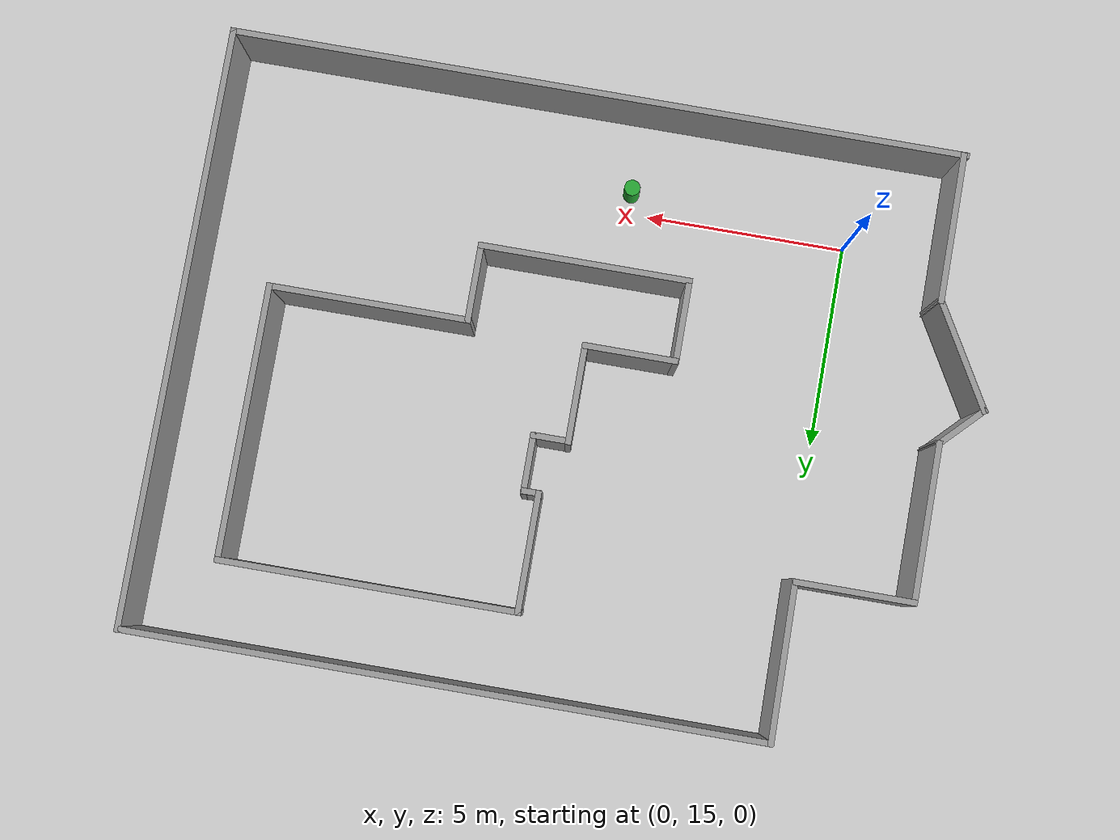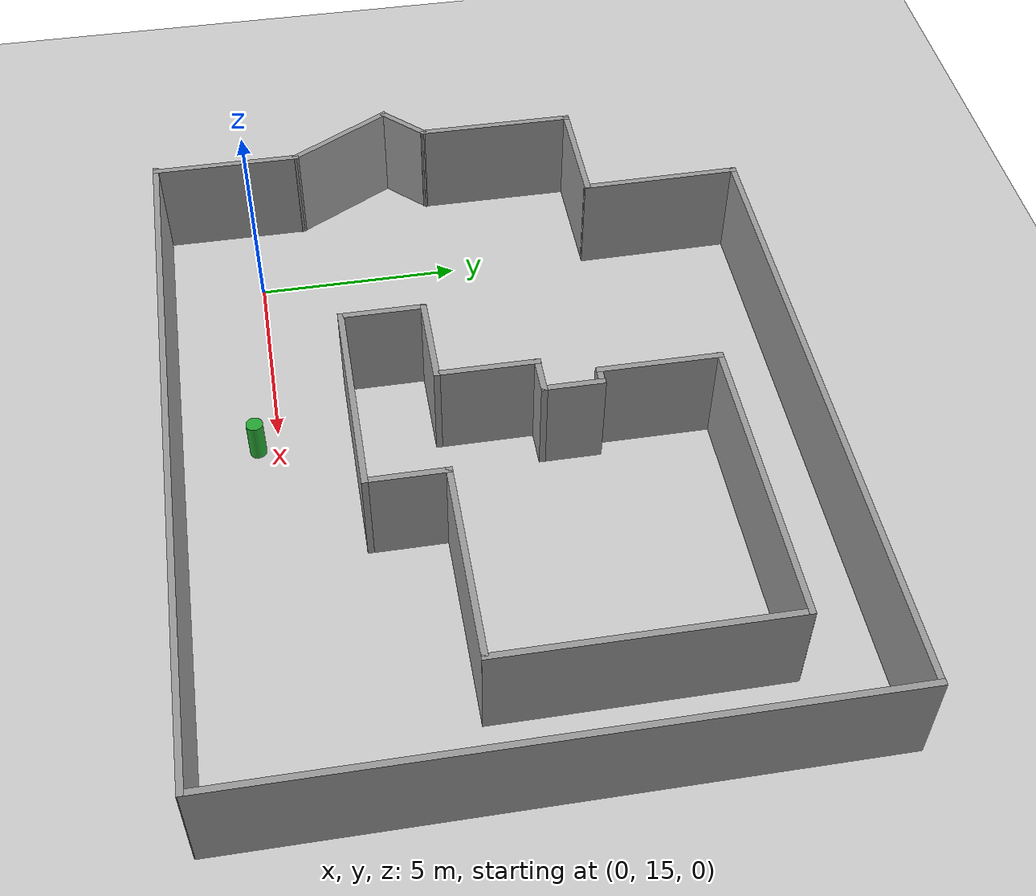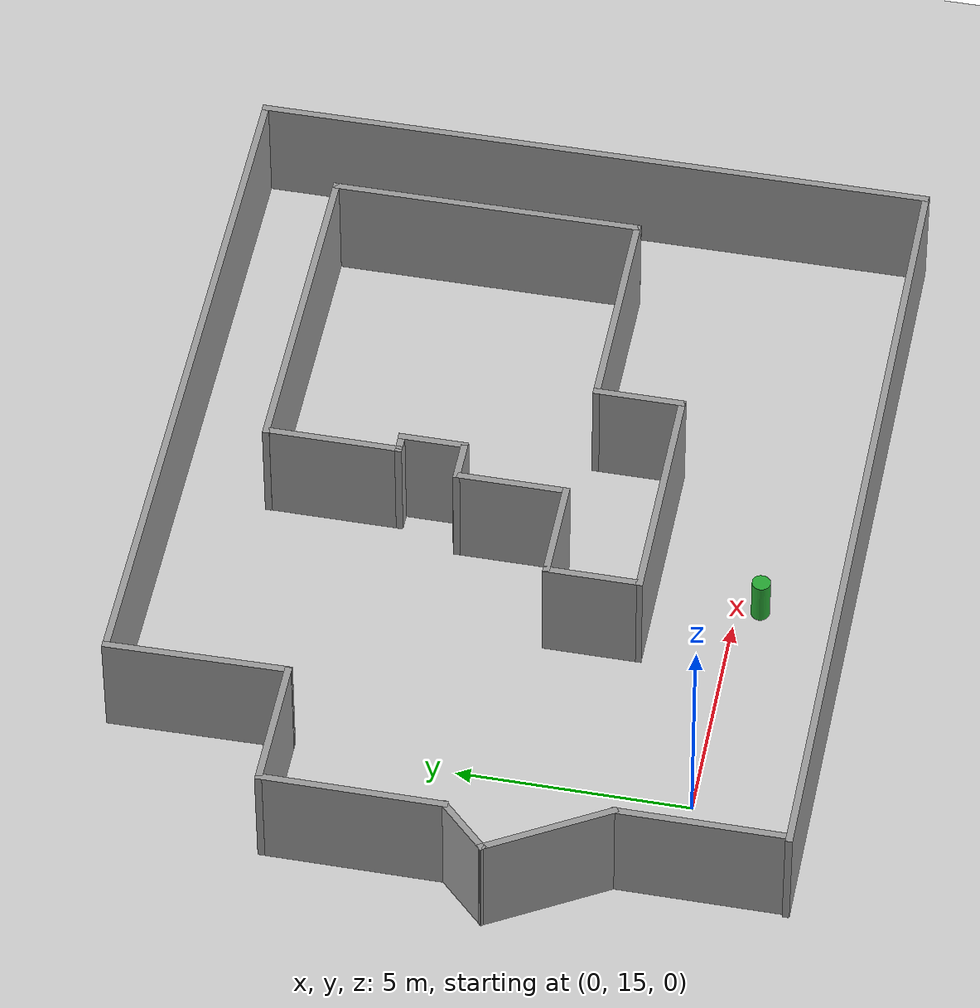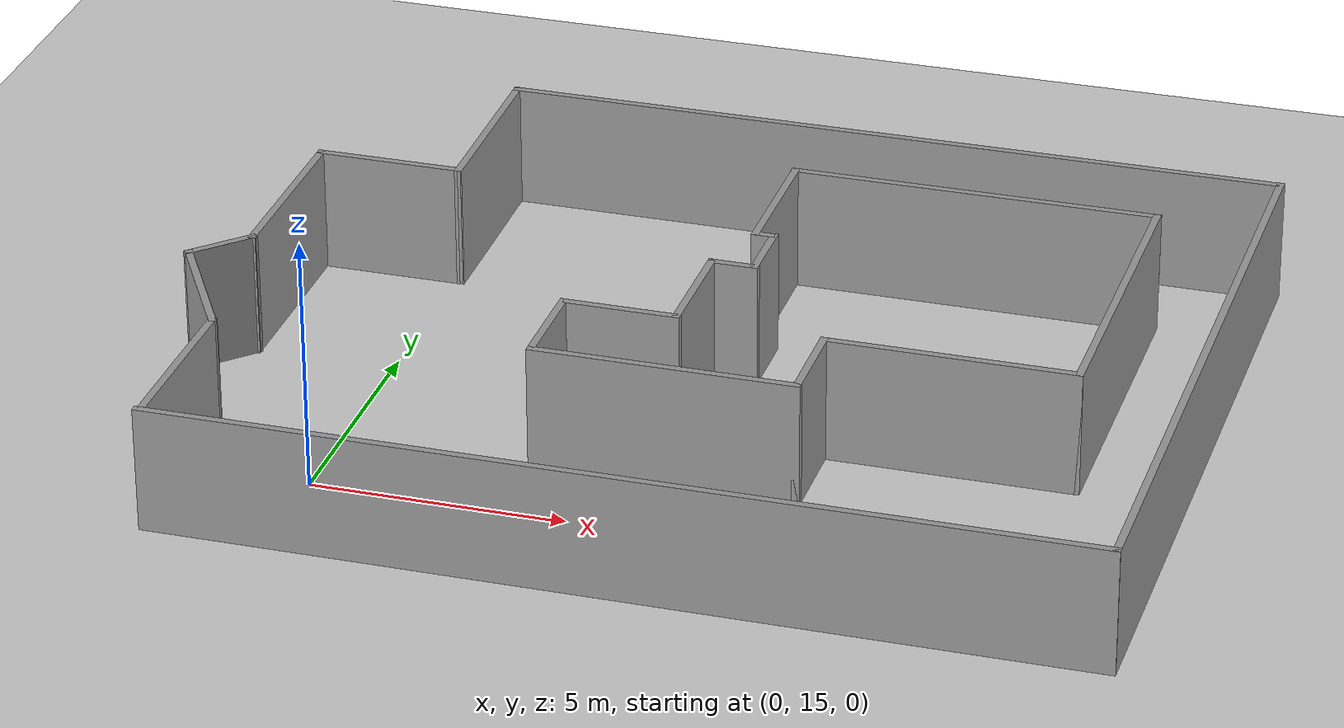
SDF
<?xml version="1.0"?>
<sdf version="1.4">
<world name="racecar_tunnel">

  <include>
    <uri>model://sun</uri>
  </include>

  <gui>
    <camera name='main'>
      <pose>0 0 10 0 1.571 0</pose>
    </camera>
  </gui>

  <model name="ground_plane">
    <static>true</static>
    <link name="link">
      <collision name="collision">
        <geometry>
          <plane>
            <normal>0 0 1</normal>
            <size>150 150</size>
          </plane>
        </geometry>
        <surface>
          <friction>
            <ode>
              <mu>100</mu>
              <mu2>50</mu2>
            </ode>
          </friction>
        </surface>
      </collision>
      <visual name="visual">
        <cast_shadows>false</cast_shadows>
        <geometry>
          <plane>
            <normal>0 0 1</normal>
            <size>150 150</size>
          </plane>
        </geometry>
        <material>
          <script>
            <uri>file://media/materials/scripts/gazebo.material</uri>
            <name>Gazebo/Grey</name>
          </script>
        </material>
      </visual>
    </link>
  </model>

  <include>
    <uri>model://racecar_description/models/MIT_Tunnel</uri>
    <pose>6 20 0 0 0 0</pose>
  </include>

<!-- CUSTOM Cylinder -->
<model name="custom_ground_plane_box">
      <pose>5.5 14.5 0.5 0 0 0</pose>
    <link name="link_box">
      <inertial>
        <pose>0 0 0 0 0 0</pose>
        <mass>100</mass>
        <inertia>
          <ixx>3.33341666667e+3</ixx>
          <ixy>0.0</ixy>
          <ixz>0.0</ixz>
          <iyy>3.33341666667e+3</iyy>
          <iyz>0.0</iyz>
          <izz>6.66666666667e+3</izz>
        </inertia>
      </inertial>
      <collision name="collision_box">
        <geometry>
          <cylinder>
            <radius>0.2</radius>
            <length>1.0</length>
          </cylinder>
        </geometry>
        <surface>
            <friction>
              <ode>
                <mu>0</mu>
                <mu2>0</mu2>
              </ode>
            </friction>
          </surface>
      </collision>

      <visual name="visual_box">
        <geometry>
          <cylinder>
            <radius>0.2</radius>
            <length>1.0</length>
          </cylinder>
        </geometry>
        <material>
            <script>
              <uri>file://media/materials/scripts/gazebo.material</uri>
              <name>Gazebo/Green</name>
            </script>
          </material>
      </visual>
    </link>
    <plugin name="plannar_mover_plugin" filename="libplannar_mover_plugin.so"/>
  </model>

</world>
</sdf>

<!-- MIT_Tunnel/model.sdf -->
<sdf version='1.6'>
  <model name='MIT_Tunnel'>
    <link name='Wall_10'>
      <pose frame=''>0.698931 -7.36559 0 0 -0 3.14159</pose>
      <self_collide>0</self_collide>
      <enable_wind>0</enable_wind>
      <kinematic>0</kinematic>
      <visual name='Wall_10_Visual'>
        <pose frame=''>0 0 1.25 0 -0 0</pose>
        <geometry>
          <box>
            <size>18.25 0.15 2.5</size>
          </box>
        </geometry>
        <material>
          <script>
            <uri>file://media/materials/scripts/gazebo.material</uri>
            <name>Gazebo/Grey</name>
          </script>
          <ambient>1 1 1 1</ambient>
          <shader type='pixel'/>
        </material>
        <meta>
          <layer>0</layer>
        </meta>
        <transparency>0</transparency>
        <cast_shadows>1</cast_shadows>
      </visual>
      <collision name='Wall_10_Collision'>
        <laser_retro>0</laser_retro>
        <max_contacts>10</max_contacts>
        <pose frame=''>0 0 1.25 0 -0 0</pose>
        <geometry>
          <box>
            <size>18.25 0.15 2.5</size>
          </box>
        </geometry>
        <surface>
          <friction>
            <ode>
              <mu>1</mu>
              <mu2>1</mu2>
              <fdir1>0 0 0</fdir1>
              <slip1>0</slip1>
              <slip2>0</slip2>
            </ode>
            <torsional>
              <coefficient>1</coefficient>
              <patch_radius>0</patch_radius>
              <surface_radius>0</surface_radius>
              <use_patch_radius>1</use_patch_radius>
              <ode>
                <slip>0</slip>
              </ode>
            </torsional>
          </friction>
          <bounce>
            <restitution_coefficient>0</restitution_coefficient>
            <threshold>1e+06</threshold>
          </bounce>
          <contact>
            <collide_without_contact>0</collide_without_contact>
            <collide_without_contact_bitmask>1</collide_without_contact_bitmask>
            <collide_bitmask>1</collide_bitmask>
            <ode>
              <soft_cfm>0</soft_cfm>
              <soft_erp>0.2</soft_erp>
              <kp>1e+13</kp>
              <kd>1</kd>
              <max_vel>0.01</max_vel>
              <min_depth>0</min_depth>
            </ode>
            <bullet>
              <split_impulse>1</split_impulse>
              <split_impulse_penetration_threshold>-0.01</split_impulse_penetration_threshold>
              <soft_cfm>0</soft_cfm>
              <soft_erp>0.2</soft_erp>
              <kp>1e+13</kp>
              <kd>1</kd>
            </bullet>
          </contact>
        </surface>
      </collision>
    </link>
    <link name='Wall_12'>
      <pose frame=''>9.74893 0.009562 0 0 -0 1.5708</pose>
      <self_collide>0</self_collide>
      <enable_wind>0</enable_wind>
      <kinematic>0</kinematic>
      <inertial>
        <inertia>
          <ixx>0</ixx>
          <ixy>0</ixy>
          <ixz>0</ixz>
          <iyy>0</iyy>
          <iyz>0</iyz>
          <izz>0</izz>
        </inertia>
        <mass>0</mass>
        <pose frame=''>0 0 0 0 -0 0</pose>
      </inertial>
      <visual name='Wall_12_Visual'>
        <pose frame=''>0 0 1.25 0 -0 0</pose>
        <geometry>
          <box>
            <size>14.8649 0.15 2.5</size>
          </box>
        </geometry>
        <material>
          <script>
            <uri>file://media/materials/scripts/gazebo.material</uri>
            <name>Gazebo/Grey</name>
          </script>
          <ambient>1 1 1 1</ambient>
          <shader type='pixel'/>
        </material>
        <meta>
          <layer>0</layer>
        </meta>
        <transparency>0</transparency>
        <cast_shadows>1</cast_shadows>
      </visual>
      <collision name='Wall_12_Collision'>
        <laser_retro>0</laser_retro>
        <max_contacts>10</max_contacts>
        <pose frame=''>0 0 1.25 0 -0 0</pose>
        <geometry>
          <box>
            <size>14.8649 0.15 2.5</size>
          </box>
        </geometry>
        <surface>
          <friction>
            <ode>
              <mu>1</mu>
              <mu2>1</mu2>
              <fdir1>0 0 0</fdir1>
              <slip1>0</slip1>
              <slip2>0</slip2>
            </ode>
            <torsional>
              <coefficient>1</coefficient>
              <patch_radius>0</patch_radius>
              <surface_radius>0</surface_radius>
              <use_patch_radius>1</use_patch_radius>
              <ode>
                <slip>0</slip>
              </ode>
            </torsional>
          </friction>
          <bounce>
            <restitution_coefficient>0</restitution_coefficient>
            <threshold>1e+06</threshold>
          </bounce>
          <contact>
            <collide_without_contact>0</collide_without_contact>
            <collide_without_contact_bitmask>1</collide_without_contact_bitmask>
            <collide_bitmask>1</collide_bitmask>
            <ode>
              <soft_cfm>0</soft_cfm>
              <soft_erp>0.2</soft_erp>
              <kp>1e+13</kp>
              <kd>1</kd>
              <max_vel>0.01</max_vel>
              <min_depth>0</min_depth>
            </ode>
            <bullet>
              <split_impulse>1</split_impulse>
              <split_impulse_penetration_threshold>-0.01</split_impulse_penetration_threshold>
              <soft_cfm>0</soft_cfm>
              <soft_erp>0.2</soft_erp>
              <kp>1e+13</kp>
              <kd>1</kd>
            </bullet>
          </contact>
        </surface>
      </collision>
    </link>
    <link name='Wall_25'>
      <pose frame=''>1.859 7.36128 0 0 -0 3.14159</pose>
      <self_collide>0</self_collide>
      <enable_wind>0</enable_wind>
      <kinematic>0</kinematic>
      <inertial>
        <inertia>
          <ixx>0</ixx>
          <ixy>0</ixy>
          <ixz>0</ixz>
          <iyy>0</iyy>
          <iyz>0</iyz>
          <izz>0</izz>
        </inertia>
        <mass>0</mass>
        <pose frame=''>0 0 0 0 -0 0</pose>
      </inertial>
      <visual name='Wall_25_Visual'>
        <pose frame=''>0 0 1.25 0 -0 0</pose>
        <geometry>
          <box>
            <size>15.7509 0.15 2.5</size>
          </box>
        </geometry>
        <material>
          <script>
            <uri>file://media/materials/scripts/gazebo.material</uri>
            <name>Gazebo/Grey</name>
          </script>
          <ambient>1 1 1 1</ambient>
          <shader type='pixel'/>
        </material>
        <meta>
          <layer>0</layer>
        </meta>
        <transparency>0</transparency>
        <cast_shadows>1</cast_shadows>
      </visual>
      <collision name='Wall_25_Collision'>
        <laser_retro>0</laser_retro>
        <max_contacts>10</max_contacts>
        <pose frame=''>0 0 1.25 0 -0 0</pose>
        <geometry>
          <box>
            <size>15.7509 0.15 2.5</size>
          </box>
        </geometry>
        <surface>
          <friction>
            <ode>
              <mu>1</mu>
              <mu2>1</mu2>
              <fdir1>0 0 0</fdir1>
              <slip1>0</slip1>
              <slip2>0</slip2>
            </ode>
            <torsional>
              <coefficient>1</coefficient>
              <patch_radius>0</patch_radius>
              <surface_radius>0</surface_radius>
              <use_patch_radius>1</use_patch_radius>
              <ode>
                <slip>0</slip>
              </ode>
            </torsional>
          </friction>
          <bounce>
            <restitution_coefficient>0</restitution_coefficient>
            <threshold>1e+06</threshold>
          </bounce>
          <contact>
            <collide_without_contact>0</collide_without_contact>
            <collide_without_contact_bitmask>1</collide_without_contact_bitmask>
            <collide_bitmask>1</collide_bitmask>
            <ode>
              <soft_cfm>0</soft_cfm>
              <soft_erp>0.2</soft_erp>
              <kp>1e+13</kp>
              <kd>1</kd>
              <max_vel>0.01</max_vel>
              <min_depth>0</min_depth>
            </ode>
            <bullet>
              <split_impulse>1</split_impulse>
              <split_impulse_penetration_threshold>-0.01</split_impulse_penetration_threshold>
              <soft_cfm>0</soft_cfm>
              <soft_erp>0.2</soft_erp>
              <kp>1e+13</kp>
              <kd>1</kd>
            </bullet>
          </contact>
        </surface>
      </collision>
    </link>
    <link name='Wall_29'>
      <pose frame=''>4.08662 5.34847 0 0 -0 3.14159</pose>
      <self_collide>0</self_collide>
      <enable_wind>0</enable_wind>
      <kinematic>0</kinematic>
      <inertial>
        <inertia>
          <ixx>0</ixx>
          <ixy>0</ixy>
          <ixz>0</ixz>
          <iyy>0</iyy>
          <iyz>0</iyz>
          <izz>0</izz>
        </inertia>
        <mass>0</mass>
        <pose frame=''>0 0 0 0 -0 0</pose>
      </inertial>
      <visual name='Wall_29_Visual'>
        <pose frame=''>0 0 1.25 0 -0 0</pose>
        <geometry>
          <box>
            <size>7.41647 0.15 2.5</size>
          </box>
        </geometry>
        <material>
          <script>
            <uri>file://media/materials/scripts/gazebo.material</uri>
            <name>Gazebo/Grey</name>
          </script>
          <ambient>1 1 1 1</ambient>
          <shader type='pixel'/>
        </material>
        <meta>
          <layer>0</layer>
        </meta>
        <transparency>0</transparency>
        <cast_shadows>1</cast_shadows>
      </visual>
      <collision name='Wall_29_Collision'>
        <laser_retro>0</laser_retro>
        <max_contacts>10</max_contacts>
        <pose frame=''>0 0 1.25 0 -0 0</pose>
        <geometry>
          <box>
            <size>7.41647 0.15 2.5</size>
          </box>
        </geometry>
        <surface>
          <friction>
            <ode>
              <mu>1</mu>
              <mu2>1</mu2>
              <fdir1>0 0 0</fdir1>
              <slip1>0</slip1>
              <slip2>0</slip2>
            </ode>
            <torsional>
              <coefficient>1</coefficient>
              <patch_radius>0</patch_radius>
              <surface_radius>0</surface_radius>
              <use_patch_radius>1</use_patch_radius>
              <ode>
                <slip>0</slip>
              </ode>
            </torsional>
          </friction>
          <bounce>
            <restitution_coefficient>0</restitution_coefficient>
            <threshold>1e+06</threshold>
          </bounce>
          <contact>
            <collide_without_contact>0</collide_without_contact>
            <collide_without_contact_bitmask>1</collide_without_contact_bitmask>
            <collide_bitmask>1</collide_bitmask>
            <ode>
              <soft_cfm>0</soft_cfm>
              <soft_erp>0.2</soft_erp>
              <kp>1e+13</kp>
              <kd>1</kd>
              <max_vel>0.01</max_vel>
              <min_depth>0</min_depth>
            </ode>
            <bullet>
              <split_impulse>1</split_impulse>
              <split_impulse_penetration_threshold>-0.01</split_impulse_penetration_threshold>
              <soft_cfm>0</soft_cfm>
              <soft_erp>0.2</soft_erp>
              <kp>1e+13</kp>
              <kd>1</kd>
            </bullet>
          </contact>
        </surface>
      </collision>
    </link>
    <link name='Wall_33'>
      <pose frame=''>7.72059 2.00346 0 0 0 -1.5708</pose>
      <self_collide>0</self_collide>
      <enable_wind>0</enable_wind>
      <kinematic>0</kinematic>
      <inertial>
        <inertia>
          <ixx>0</ixx>
          <ixy>0</ixy>
          <ixz>0</ixz>
          <iyy>0</iyy>
          <iyz>0</iyz>
          <izz>0</izz>
        </inertia>
        <mass>0</mass>
        <pose frame=''>0 0 0 0 -0 0</pose>
      </inertial>
      <visual name='Wall_33_Visual'>
        <pose frame=''>0 0 1.25 0 -0 0</pose>
        <geometry>
          <box>
            <size>6.82315 0.15 2.5</size>
          </box>
        </geometry>
        <material>
          <script>
            <uri>file://media/materials/scripts/gazebo.material</uri>
            <name>Gazebo/Grey</name>
          </script>
          <ambient>1 1 1 1</ambient>
          <shader type='pixel'/>
        </material>
        <meta>
          <layer>0</layer>
        </meta>
        <transparency>0</transparency>
        <cast_shadows>1</cast_shadows>
      </visual>
      <collision name='Wall_33_Collision'>
        <laser_retro>0</laser_retro>
        <max_contacts>10</max_contacts>
        <pose frame=''>0 0 1.25 0 -0 0</pose>
        <geometry>
          <box>
            <size>6.82315 0.15 2.5</size>
          </box>
        </geometry>
        <surface>
          <friction>
            <ode>
              <mu>1</mu>
              <mu2>1</mu2>
              <fdir1>0 0 0</fdir1>
              <slip1>0</slip1>
              <slip2>0</slip2>
            </ode>
            <torsional>
              <coefficient>1</coefficient>
              <patch_radius>0</patch_radius>
              <surface_radius>0</surface_radius>
              <use_patch_radius>1</use_patch_radius>
              <ode>
                <slip>0</slip>
              </ode>
            </torsional>
          </friction>
          <bounce>
            <restitution_coefficient>0</restitution_coefficient>
            <threshold>1e+06</threshold>
          </bounce>
          <contact>
            <collide_without_contact>0</collide_without_contact>
            <collide_without_contact_bitmask>1</collide_without_contact_bitmask>
            <collide_bitmask>1</collide_bitmask>
            <ode>
              <soft_cfm>0</soft_cfm>
              <soft_erp>0.2</soft_erp>
              <kp>1e+13</kp>
              <kd>1</kd>
              <max_vel>0.01</max_vel>
              <min_depth>0</min_depth>
            </ode>
            <bullet>
              <split_impulse>1</split_impulse>
              <split_impulse_penetration_threshold>-0.01</split_impulse_penetration_threshold>
              <soft_cfm>0</soft_cfm>
              <soft_erp>0.2</soft_erp>
              <kp>1e+13</kp>
              <kd>1</kd>
            </bullet>
          </contact>
        </surface>
      </collision>
    </link>
    <link name='Wall_47'>
      <pose frame=''>5.2866 -1.33311 0 0 -0 3.14159</pose>
      <self_collide>0</self_collide>
      <enable_wind>0</enable_wind>
      <kinematic>0</kinematic>
      <visual name='Wall_47_Visual'>
        <pose frame=''>0 0 1.25 0 -0 0</pose>
        <geometry>
          <box>
            <size>5 0.15 2.5</size>
          </box>
        </geometry>
        <material>
          <script>
            <uri>file://media/materials/scripts/gazebo.material</uri>
            <name>Gazebo/Grey</name>
          </script>
          <ambient>1 1 1 1</ambient>
          <shader type='pixel'/>
        </material>
        <meta>
          <layer>0</layer>
        </meta>
        <transparency>0</transparency>
        <cast_shadows>1</cast_shadows>
      </visual>
      <collision name='Wall_47_Collision'>
        <laser_retro>0</laser_retro>
        <max_contacts>10</max_contacts>
        <pose frame=''>0 0 1.25 0 -0 0</pose>
        <geometry>
          <box>
            <size>5 0.15 2.5</size>
          </box>
        </geometry>
        <surface>
          <friction>
            <ode>
              <mu>1</mu>
              <mu2>1</mu2>
              <fdir1>0 0 0</fdir1>
              <slip1>0</slip1>
              <slip2>0</slip2>
            </ode>
            <torsional>
              <coefficient>1</coefficient>
              <patch_radius>0</patch_radius>
              <surface_radius>0</surface_radius>
              <use_patch_radius>1</use_patch_radius>
              <ode>
                <slip>0</slip>
              </ode>
            </torsional>
          </friction>
          <bounce>
            <restitution_coefficient>0</restitution_coefficient>
            <threshold>1e+06</threshold>
          </bounce>
          <contact>
            <collide_without_contact>0</collide_without_contact>
            <collide_without_contact_bitmask>1</collide_without_contact_bitmask>
            <collide_bitmask>1</collide_bitmask>
            <ode>
              <soft_cfm>0</soft_cfm>
              <soft_erp>0.2</soft_erp>
              <kp>1e+13</kp>
              <kd>1</kd>
              <max_vel>0.01</max_vel>
              <min_depth>0</min_depth>
            </ode>
            <bullet>
              <split_impulse>1</split_impulse>
              <split_impulse_penetration_threshold>-0.01</split_impulse_penetration_threshold>
              <soft_cfm>0</soft_cfm>
              <soft_erp>0.2</soft_erp>
              <kp>1e+13</kp>
              <kd>1</kd>
            </bullet>
          </contact>
        </surface>
      </collision>
    </link>
    <link name='Wall_48'>
      <pose frame=''>2.8616 -2.25811 0 0 0 -1.5708</pose>
      <self_collide>0</self_collide>
      <enable_wind>0</enable_wind>
      <kinematic>0</kinematic>
      <visual name='Wall_48_Visual'>
        <pose frame=''>0 0 1.25 0 -0 0</pose>
        <geometry>
          <box>
            <size>2 0.15 2.5</size>
          </box>
        </geometry>
        <material>
          <script>
            <uri>file://media/materials/scripts/gazebo.material</uri>
            <name>Gazebo/Grey</name>
          </script>
          <ambient>1 1 1 1</ambient>
          <shader type='pixel'/>
        </material>
        <meta>
          <layer>0</layer>
        </meta>
        <transparency>0</transparency>
        <cast_shadows>1</cast_shadows>
      </visual>
      <collision name='Wall_48_Collision'>
        <laser_retro>0</laser_retro>
        <max_contacts>10</max_contacts>
        <pose frame=''>0 0 1.25 0 -0 0</pose>
        <geometry>
          <box>
            <size>2 0.15 2.5</size>
          </box>
        </geometry>
        <surface>
          <friction>
            <ode>
              <mu>1</mu>
              <mu2>1</mu2>
              <fdir1>0 0 0</fdir1>
              <slip1>0</slip1>
              <slip2>0</slip2>
            </ode>
            <torsional>
              <coefficient>1</coefficient>
              <patch_radius>0</patch_radius>
              <surface_radius>0</surface_radius>
              <use_patch_radius>1</use_patch_radius>
              <ode>
                <slip>0</slip>
              </ode>
            </torsional>
          </friction>
          <bounce>
            <restitution_coefficient>0</restitution_coefficient>
            <threshold>1e+06</threshold>
          </bounce>
          <contact>
            <collide_without_contact>0</collide_without_contact>
            <collide_without_contact_bitmask>1</collide_without_contact_bitmask>
            <collide_bitmask>1</collide_bitmask>
            <ode>
              <soft_cfm>0</soft_cfm>
              <soft_erp>0.2</soft_erp>
              <kp>1e+13</kp>
              <kd>1</kd>
              <max_vel>0.01</max_vel>
              <min_depth>0</min_depth>
            </ode>
            <bullet>
              <split_impulse>1</split_impulse>
              <split_impulse_penetration_threshold>-0.01</split_impulse_penetration_threshold>
              <soft_cfm>0</soft_cfm>
              <soft_erp>0.2</soft_erp>
              <kp>1e+13</kp>
              <kd>1</kd>
            </bullet>
          </contact>
        </surface>
      </collision>
    </link>
    <link name='Wall_50'>
      <pose frame=''>0.311605 -3.18311 0 0 -0 3.14159</pose>
      <self_collide>0</self_collide>
      <enable_wind>0</enable_wind>
      <kinematic>0</kinematic>
      <visual name='Wall_50_Visual'>
        <pose frame=''>0 0 1.25 0 -0 0</pose>
        <geometry>
          <box>
            <size>5.25 0.15 2.5</size>
          </box>
        </geometry>
        <material>
          <script>
            <uri>file://media/materials/scripts/gazebo.material</uri>
            <name>Gazebo/Grey</name>
          </script>
          <ambient>1 1 1 1</ambient>
          <shader type='pixel'/>
        </material>
        <meta>
          <layer>0</layer>
        </meta>
        <transparency>0</transparency>
        <cast_shadows>1</cast_shadows>
      </visual>
      <collision name='Wall_50_Collision'>
        <laser_retro>0</laser_retro>
        <max_contacts>10</max_contacts>
        <pose frame=''>0 0 1.25 0 -0 0</pose>
        <geometry>
          <box>
            <size>5.25 0.15 2.5</size>
          </box>
        </geometry>
        <surface>
          <friction>
            <ode>
              <mu>1</mu>
              <mu2>1</mu2>
              <fdir1>0 0 0</fdir1>
              <slip1>0</slip1>
              <slip2>0</slip2>
            </ode>
            <torsional>
              <coefficient>1</coefficient>
              <patch_radius>0</patch_radius>
              <surface_radius>0</surface_radius>
              <use_patch_radius>1</use_patch_radius>
              <ode>
                <slip>0</slip>
              </ode>
            </torsional>
          </friction>
          <bounce>
            <restitution_coefficient>0</restitution_coefficient>
            <threshold>1e+06</threshold>
          </bounce>
          <contact>
            <collide_without_contact>0</collide_without_contact>
            <collide_without_contact_bitmask>1</collide_without_contact_bitmask>
            <collide_bitmask>1</collide_bitmask>
            <ode>
              <soft_cfm>0</soft_cfm>
              <soft_erp>0.2</soft_erp>
              <kp>1e+13</kp>
              <kd>1</kd>
              <max_vel>0.01</max_vel>
              <min_depth>0</min_depth>
            </ode>
            <bullet>
              <split_impulse>1</split_impulse>
              <split_impulse_penetration_threshold>-0.01</split_impulse_penetration_threshold>
              <soft_cfm>0</soft_cfm>
              <soft_erp>0.2</soft_erp>
              <kp>1e+13</kp>
              <kd>1</kd>
            </bullet>
          </contact>
        </surface>
      </collision>
    </link>
    <link name='Wall_52'>
      <pose frame=''>-5.92807 5.43983 0 0 0 -1.55885</pose>
      <self_collide>0</self_collide>
      <enable_wind>0</enable_wind>
      <kinematic>0</kinematic>
      <visual name='Wall_52_Visual'>
        <pose frame=''>0 0 1.25 0 -0 0</pose>
        <geometry>
          <box>
            <size>4 0.15 2.5</size>
          </box>
        </geometry>
        <material>
          <script>
            <uri>file://media/materials/scripts/gazebo.material</uri>
            <name>Gazebo/Grey</name>
          </script>
          <ambient>1 1 1 1</ambient>
          <shader type='pixel'/>
        </material>
        <meta>
          <layer>0</layer>
        </meta>
        <transparency>0</transparency>
        <cast_shadows>1</cast_shadows>
      </visual>
      <collision name='Wall_52_Collision'>
        <laser_retro>0</laser_retro>
        <max_contacts>10</max_contacts>
        <pose frame=''>0 0 1.25 0 -0 0</pose>
        <geometry>
          <box>
            <size>4 0.15 2.5</size>
          </box>
        </geometry>
        <surface>
          <friction>
            <ode>
              <mu>1</mu>
              <mu2>1</mu2>
              <fdir1>0 0 0</fdir1>
              <slip1>0</slip1>
              <slip2>0</slip2>
            </ode>
            <torsional>
              <coefficient>1</coefficient>
              <patch_radius>0</patch_radius>
              <surface_radius>0</surface_radius>
              <use_patch_radius>1</use_patch_radius>
              <ode>
                <slip>0</slip>
              </ode>
            </torsional>
          </friction>
          <bounce>
            <restitution_coefficient>0</restitution_coefficient>
            <threshold>1e+06</threshold>
          </bounce>
          <contact>
            <collide_without_contact>0</collide_without_contact>
            <collide_without_contact_bitmask>1</collide_without_contact_bitmask>
            <collide_bitmask>1</collide_bitmask>
            <ode>
              <soft_cfm>0</soft_cfm>
              <soft_erp>0.2</soft_erp>
              <kp>1e+13</kp>
              <kd>1</kd>
              <max_vel>0.01</max_vel>
              <min_depth>0</min_depth>
            </ode>
            <bullet>
              <split_impulse>1</split_impulse>
              <split_impulse_penetration_threshold>-0.01</split_impulse_penetration_threshold>
              <soft_cfm>0</soft_cfm>
              <soft_erp>0.2</soft_erp>
              <kp>1e+13</kp>
              <kd>1</kd>
            </bullet>
          </contact>
        </surface>
      </collision>
    </link>
    <link name='Wall_53'>
      <pose frame=''>-7.35307 3.51483 0 0 -0 3.14159</pose>
      <self_collide>0</self_collide>
      <enable_wind>0</enable_wind>
      <kinematic>0</kinematic>
      <visual name='Wall_53_Visual'>
        <pose frame=''>0 0 1.25 0 -0 0</pose>
        <geometry>
          <box>
            <size>3 0.15 2.5</size>
          </box>
        </geometry>
        <material>
          <script>
            <uri>file://media/materials/scripts/gazebo.material</uri>
            <name>Gazebo/Grey</name>
          </script>
          <ambient>1 1 1 1</ambient>
          <shader type='pixel'/>
        </material>
        <meta>
          <layer>0</layer>
        </meta>
        <transparency>0</transparency>
        <cast_shadows>1</cast_shadows>
      </visual>
      <collision name='Wall_53_Collision'>
        <laser_retro>0</laser_retro>
        <max_contacts>10</max_contacts>
        <pose frame=''>0 0 1.25 0 -0 0</pose>
        <geometry>
          <box>
            <size>3 0.15 2.5</size>
          </box>
        </geometry>
        <surface>
          <friction>
            <ode>
              <mu>1</mu>
              <mu2>1</mu2>
              <fdir1>0 0 0</fdir1>
              <slip1>0</slip1>
              <slip2>0</slip2>
            </ode>
            <torsional>
              <coefficient>1</coefficient>
              <patch_radius>0</patch_radius>
              <surface_radius>0</surface_radius>
              <use_patch_radius>1</use_patch_radius>
              <ode>
                <slip>0</slip>
              </ode>
            </torsional>
          </friction>
          <bounce>
            <restitution_coefficient>0</restitution_coefficient>
            <threshold>1e+06</threshold>
          </bounce>
          <contact>
            <collide_without_contact>0</collide_without_contact>
            <collide_without_contact_bitmask>1</collide_without_contact_bitmask>
            <collide_bitmask>1</collide_bitmask>
            <ode>
              <soft_cfm>0</soft_cfm>
              <soft_erp>0.2</soft_erp>
              <kp>1e+13</kp>
              <kd>1</kd>
              <max_vel>0.01</max_vel>
              <min_depth>0</min_depth>
            </ode>
            <bullet>
              <split_impulse>1</split_impulse>
              <split_impulse_penetration_threshold>-0.01</split_impulse_penetration_threshold>
              <soft_cfm>0</soft_cfm>
              <soft_erp>0.2</soft_erp>
              <kp>1e+13</kp>
              <kd>1</kd>
            </bullet>
          </contact>
        </surface>
      </collision>
    </link>
    <link name='Wall_54'>
      <pose frame=''>-8.77807 1.58983 0 0 0 -1.5708</pose>
      <self_collide>0</self_collide>
      <enable_wind>0</enable_wind>
      <kinematic>0</kinematic>
      <visual name='Wall_54_Visual'>
        <pose frame=''>0 0 1.25 0 -0 0</pose>
        <geometry>
          <box>
            <size>4 0.15 2.5</size>
          </box>
        </geometry>
        <material>
          <script>
            <uri>file://media/materials/scripts/gazebo.material</uri>
            <name>Gazebo/Grey</name>
          </script>
          <ambient>1 1 1 1</ambient>
          <shader type='pixel'/>
        </material>
        <meta>
          <layer>0</layer>
        </meta>
        <transparency>0</transparency>
        <cast_shadows>1</cast_shadows>
      </visual>
      <collision name='Wall_54_Collision'>
        <laser_retro>0</laser_retro>
        <max_contacts>10</max_contacts>
        <pose frame=''>0 0 1.25 0 -0 0</pose>
        <geometry>
          <box>
            <size>4 0.15 2.5</size>
          </box>
        </geometry>
        <surface>
          <friction>
            <ode>
              <mu>1</mu>
              <mu2>1</mu2>
              <fdir1>0 0 0</fdir1>
              <slip1>0</slip1>
              <slip2>0</slip2>
            </ode>
            <torsional>
              <coefficient>1</coefficient>
              <patch_radius>0</patch_radius>
              <surface_radius>0</surface_radius>
              <use_patch_radius>1</use_patch_radius>
              <ode>
                <slip>0</slip>
              </ode>
            </torsional>
          </friction>
          <bounce>
            <restitution_coefficient>0</restitution_coefficient>
            <threshold>1e+06</threshold>
          </bounce>
          <contact>
            <collide_without_contact>0</collide_without_contact>
            <collide_without_contact_bitmask>1</collide_without_contact_bitmask>
            <collide_bitmask>1</collide_bitmask>
            <ode>
              <soft_cfm>0</soft_cfm>
              <soft_erp>0.2</soft_erp>
              <kp>1e+13</kp>
              <kd>1</kd>
              <max_vel>0.01</max_vel>
              <min_depth>0</min_depth>
            </ode>
            <bullet>
              <split_impulse>1</split_impulse>
              <split_impulse_penetration_threshold>-0.01</split_impulse_penetration_threshold>
              <soft_cfm>0</soft_cfm>
              <soft_erp>0.2</soft_erp>
              <kp>1e+13</kp>
              <kd>1</kd>
            </bullet>
          </contact>
        </surface>
      </collision>
    </link>
    <link name='Wall_55'>
      <pose frame=''>-9.24797 -0.811907 0 0 0 -2.34897</pose>
      <self_collide>0</self_collide>
      <enable_wind>0</enable_wind>
      <kinematic>0</kinematic>
      <visual name='Wall_55_Visual'>
        <pose frame=''>0 0 1.25 0 -0 0</pose>
        <geometry>
          <box>
            <size>1.48878 0.15 2.5</size>
          </box>
        </geometry>
        <material>
          <script>
            <uri>file://media/materials/scripts/gazebo.material</uri>
            <name>Gazebo/Grey</name>
          </script>
          <ambient>1 1 1 1</ambient>
          <shader type='pixel'/>
        </material>
        <meta>
          <layer>0</layer>
        </meta>
        <transparency>0</transparency>
        <cast_shadows>1</cast_shadows>
      </visual>
      <collision name='Wall_55_Collision'>
        <laser_retro>0</laser_retro>
        <max_contacts>10</max_contacts>
        <pose frame=''>0 0 1.25 0 -0 0</pose>
        <geometry>
          <box>
            <size>1.48878 0.15 2.5</size>
          </box>
        </geometry>
        <surface>
          <friction>
            <ode>
              <mu>1</mu>
              <mu2>1</mu2>
              <fdir1>0 0 0</fdir1>
              <slip1>0</slip1>
              <slip2>0</slip2>
            </ode>
            <torsional>
              <coefficient>1</coefficient>
              <patch_radius>0</patch_radius>
              <surface_radius>0</surface_radius>
              <use_patch_radius>1</use_patch_radius>
              <ode>
                <slip>0</slip>
              </ode>
            </torsional>
          </friction>
          <bounce>
            <restitution_coefficient>0</restitution_coefficient>
            <threshold>1e+06</threshold>
          </bounce>
          <contact>
            <collide_without_contact>0</collide_without_contact>
            <collide_without_contact_bitmask>1</collide_without_contact_bitmask>
            <collide_bitmask>1</collide_bitmask>
            <ode>
              <soft_cfm>0</soft_cfm>
              <soft_erp>0.2</soft_erp>
              <kp>1e+13</kp>
              <kd>1</kd>
              <max_vel>0.01</max_vel>
              <min_depth>0</min_depth>
            </ode>
            <bullet>
              <split_impulse>1</split_impulse>
              <split_impulse_penetration_threshold>-0.01</split_impulse_penetration_threshold>
              <soft_cfm>0</soft_cfm>
              <soft_erp>0.2</soft_erp>
              <kp>1e+13</kp>
              <kd>1</kd>
            </bullet>
          </contact>
        </surface>
      </collision>
    </link>
    <link name='Wall_56'>
      <pose frame=''>-9.00537 -2.52273 0 0 0 -1.0472</pose>
      <self_collide>0</self_collide>
      <enable_wind>0</enable_wind>
      <kinematic>0</kinematic>
      <visual name='Wall_56_Visual'>
        <pose frame=''>0 0 1.25 0 -0 0</pose>
        <geometry>
          <box>
            <size>3 0.15 2.5</size>
          </box>
        </geometry>
        <material>
          <script>
            <uri>file://media/materials/scripts/gazebo.material</uri>
            <name>Gazebo/Grey</name>
          </script>
          <ambient>1 1 1 1</ambient>
          <shader type='pixel'/>
        </material>
        <meta>
          <layer>0</layer>
        </meta>
        <transparency>0</transparency>
        <cast_shadows>1</cast_shadows>
      </visual>
      <collision name='Wall_56_Collision'>
        <laser_retro>0</laser_retro>
        <max_contacts>10</max_contacts>
        <pose frame=''>0 0 1.25 0 -0 0</pose>
        <geometry>
          <box>
            <size>3 0.15 2.5</size>
          </box>
        </geometry>
        <surface>
          <friction>
            <ode>
              <mu>1</mu>
              <mu2>1</mu2>
              <fdir1>0 0 0</fdir1>
              <slip1>0</slip1>
              <slip2>0</slip2>
            </ode>
            <torsional>
              <coefficient>1</coefficient>
              <patch_radius>0</patch_radius>
              <surface_radius>0</surface_radius>
              <use_patch_radius>1</use_patch_radius>
              <ode>
                <slip>0</slip>
              </ode>
            </torsional>
          </friction>
          <bounce>
            <restitution_coefficient>0</restitution_coefficient>
            <threshold>1e+06</threshold>
          </bounce>
          <contact>
            <collide_without_contact>0</collide_without_contact>
            <collide_without_contact_bitmask>1</collide_without_contact_bitmask>
            <collide_bitmask>1</collide_bitmask>
            <ode>
              <soft_cfm>0</soft_cfm>
              <soft_erp>0.2</soft_erp>
              <kp>1e+13</kp>
              <kd>1</kd>
              <max_vel>0.01</max_vel>
              <min_depth>0</min_depth>
            </ode>
            <bullet>
              <split_impulse>1</split_impulse>
              <split_impulse_penetration_threshold>-0.01</split_impulse_penetration_threshold>
              <soft_cfm>0</soft_cfm>
              <soft_erp>0.2</soft_erp>
              <kp>1e+13</kp>
              <kd>1</kd>
            </bullet>
          </contact>
        </surface>
      </collision>
    </link>
    <link name='Wall_57'>
      <pose frame=''>-8.29287 -5.55682 0 0 0 -1.5708</pose>
      <self_collide>0</self_collide>
      <enable_wind>0</enable_wind>
      <kinematic>0</kinematic>
      <visual name='Wall_57_Visual'>
        <pose frame=''>0 0 1.25 0 -0 0</pose>
        <geometry>
          <box>
            <size>3.75 0.15 2.5</size>
          </box>
        </geometry>
        <material>
          <script>
            <uri>file://media/materials/scripts/gazebo.material</uri>
            <name>Gazebo/Grey</name>
          </script>
          <ambient>1 1 1 1</ambient>
          <shader type='pixel'/>
        </material>
        <meta>
          <layer>0</layer>
        </meta>
        <transparency>0</transparency>
        <cast_shadows>1</cast_shadows>
      </visual>
      <collision name='Wall_57_Collision'>
        <laser_retro>0</laser_retro>
        <max_contacts>10</max_contacts>
        <pose frame=''>0 0 1.25 0 -0 0</pose>
        <geometry>
          <box>
            <size>3.75 0.15 2.5</size>
          </box>
        </geometry>
        <surface>
          <friction>
            <ode>
              <mu>1</mu>
              <mu2>1</mu2>
              <fdir1>0 0 0</fdir1>
              <slip1>0</slip1>
              <slip2>0</slip2>
            </ode>
            <torsional>
              <coefficient>1</coefficient>
              <patch_radius>0</patch_radius>
              <surface_radius>0</surface_radius>
              <use_patch_radius>1</use_patch_radius>
              <ode>
                <slip>0</slip>
              </ode>
            </torsional>
          </friction>
          <bounce>
            <restitution_coefficient>0</restitution_coefficient>
            <threshold>1e+06</threshold>
          </bounce>
          <contact>
            <collide_without_contact>0</collide_without_contact>
            <collide_without_contact_bitmask>1</collide_without_contact_bitmask>
            <collide_bitmask>1</collide_bitmask>
            <ode>
              <soft_cfm>0</soft_cfm>
              <soft_erp>0.2</soft_erp>
              <kp>1e+13</kp>
              <kd>1</kd>
              <max_vel>0.01</max_vel>
              <min_depth>0</min_depth>
            </ode>
            <bullet>
              <split_impulse>1</split_impulse>
              <split_impulse_penetration_threshold>-0.01</split_impulse_penetration_threshold>
              <soft_cfm>0</soft_cfm>
              <soft_erp>0.2</soft_erp>
              <kp>1e+13</kp>
              <kd>1</kd>
            </bullet>
          </contact>
        </surface>
      </collision>
    </link>
    <link name='Wall_59'>
      <pose frame=''>0.462263 3.91657 0 0 0 -1.5708</pose>
      <self_collide>0</self_collide>
      <enable_wind>0</enable_wind>
      <kinematic>0</kinematic>
      <visual name='Wall_59_Visual'>
        <pose frame=''>0 0 1.25 0 -0 0</pose>
        <geometry>
          <box>
            <size>3 0.15 2.5</size>
          </box>
        </geometry>
        <material>
          <script>
            <uri>file://media/materials/scripts/gazebo.material</uri>
            <name>Gazebo/Grey</name>
          </script>
          <ambient>1 1 1 1</ambient>
          <shader type='pixel'/>
        </material>
        <meta>
          <layer>0</layer>
        </meta>
        <transparency>0</transparency>
        <cast_shadows>1</cast_shadows>
      </visual>
      <collision name='Wall_59_Collision'>
        <laser_retro>0</laser_retro>
        <max_contacts>10</max_contacts>
        <pose frame=''>0 0 1.25 0 -0 0</pose>
        <geometry>
          <box>
            <size>3 0.15 2.5</size>
          </box>
        </geometry>
        <surface>
          <friction>
            <ode>
              <mu>1</mu>
              <mu2>1</mu2>
              <fdir1>0 0 0</fdir1>
              <slip1>0</slip1>
              <slip2>0</slip2>
            </ode>
            <torsional>
              <coefficient>1</coefficient>
              <patch_radius>0</patch_radius>
              <surface_radius>0</surface_radius>
              <use_patch_radius>1</use_patch_radius>
              <ode>
                <slip>0</slip>
              </ode>
            </torsional>
          </friction>
          <bounce>
            <restitution_coefficient>0</restitution_coefficient>
            <threshold>1e+06</threshold>
          </bounce>
          <contact>
            <collide_without_contact>0</collide_without_contact>
            <collide_without_contact_bitmask>1</collide_without_contact_bitmask>
            <collide_bitmask>1</collide_bitmask>
            <ode>
              <soft_cfm>0</soft_cfm>
              <soft_erp>0.2</soft_erp>
              <kp>1e+13</kp>
              <kd>1</kd>
              <max_vel>0.01</max_vel>
              <min_depth>0</min_depth>
            </ode>
            <bullet>
              <split_impulse>1</split_impulse>
              <split_impulse_penetration_threshold>-0.01</split_impulse_penetration_threshold>
              <soft_cfm>0</soft_cfm>
              <soft_erp>0.2</soft_erp>
              <kp>1e+13</kp>
              <kd>1</kd>
            </bullet>
          </contact>
        </surface>
      </collision>
    </link>
    <link name='Wall_60'>
      <pose frame=''>0.399882 1.13482 0 0 -0 0</pose>
      <self_collide>0</self_collide>
      <enable_wind>0</enable_wind>
      <kinematic>0</kinematic>
      <visual name='Wall_60_Visual'>
        <pose frame=''>0 0 1.25 0 -0 0</pose>
        <geometry>
          <box>
            <size>1 0.15 2.5</size>
          </box>
        </geometry>
        <material>
          <script>
            <uri>file://media/materials/scripts/gazebo.material</uri>
            <name>Gazebo/Grey</name>
          </script>
          <ambient>1 1 1 1</ambient>
          <shader type='pixel'/>
        </material>
        <meta>
          <layer>0</layer>
        </meta>
        <transparency>0</transparency>
        <cast_shadows>1</cast_shadows>
      </visual>
      <collision name='Wall_60_Collision'>
        <laser_retro>0</laser_retro>
        <max_contacts>10</max_contacts>
        <pose frame=''>0 0 1.25 0 -0 0</pose>
        <geometry>
          <box>
            <size>1 0.15 2.5</size>
          </box>
        </geometry>
        <surface>
          <friction>
            <ode>
              <mu>1</mu>
              <mu2>1</mu2>
              <fdir1>0 0 0</fdir1>
              <slip1>0</slip1>
              <slip2>0</slip2>
            </ode>
            <torsional>
              <coefficient>1</coefficient>
              <patch_radius>0</patch_radius>
              <surface_radius>0</surface_radius>
              <use_patch_radius>1</use_patch_radius>
              <ode>
                <slip>0</slip>
              </ode>
            </torsional>
          </friction>
          <bounce>
            <restitution_coefficient>0</restitution_coefficient>
            <threshold>1e+06</threshold>
          </bounce>
          <contact>
            <collide_without_contact>0</collide_without_contact>
            <collide_without_contact_bitmask>1</collide_without_contact_bitmask>
            <collide_bitmask>1</collide_bitmask>
            <ode>
              <soft_cfm>0</soft_cfm>
              <soft_erp>0.2</soft_erp>
              <kp>1e+13</kp>
              <kd>1</kd>
              <max_vel>0.01</max_vel>
              <min_depth>0</min_depth>
            </ode>
            <bullet>
              <split_impulse>1</split_impulse>
              <split_impulse_penetration_threshold>-0.01</split_impulse_penetration_threshold>
              <soft_cfm>0</soft_cfm>
              <soft_erp>0.2</soft_erp>
              <kp>1e+13</kp>
              <kd>1</kd>
            </bullet>
          </contact>
        </surface>
      </collision>
    </link>
    <link name='Wall_61'>
      <pose frame=''>0.824882 1.81658 0 0 0 -1.5708</pose>
      <self_collide>0</self_collide>
      <enable_wind>0</enable_wind>
      <kinematic>0</kinematic>
      <visual name='Wall_61_Visual'>
        <pose frame=''>0 0 1.25 0 -0 0</pose>
        <geometry>
          <box>
            <size>1.5 0.15 2.5</size>
          </box>
        </geometry>
        <material>
          <script>
            <uri>file://media/materials/scripts/gazebo.material</uri>
            <name>Gazebo/Grey</name>
          </script>
          <ambient>1 1 1 1</ambient>
          <shader type='pixel'/>
        </material>
        <meta>
          <layer>0</layer>
        </meta>
        <transparency>0</transparency>
        <cast_shadows>1</cast_shadows>
      </visual>
      <collision name='Wall_61_Collision'>
        <laser_retro>0</laser_retro>
        <max_contacts>10</max_contacts>
        <pose frame=''>0 0 1.25 0 -0 0</pose>
        <geometry>
          <box>
            <size>1.5 0.15 2.5</size>
          </box>
        </geometry>
        <surface>
          <friction>
            <ode>
              <mu>1</mu>
              <mu2>1</mu2>
              <fdir1>0 0 0</fdir1>
              <slip1>0</slip1>
              <slip2>0</slip2>
            </ode>
            <torsional>
              <coefficient>1</coefficient>
              <patch_radius>0</patch_radius>
              <surface_radius>0</surface_radius>
              <use_patch_radius>1</use_patch_radius>
              <ode>
                <slip>0</slip>
              </ode>
            </torsional>
          </friction>
          <bounce>
            <restitution_coefficient>0</restitution_coefficient>
            <threshold>1e+06</threshold>
          </bounce>
          <contact>
            <collide_without_contact>0</collide_without_contact>
            <collide_without_contact_bitmask>1</collide_without_contact_bitmask>
            <collide_bitmask>1</collide_bitmask>
            <ode>
              <soft_cfm>0</soft_cfm>
              <soft_erp>0.2</soft_erp>
              <kp>1e+13</kp>
              <kd>1</kd>
              <max_vel>0.01</max_vel>
              <min_depth>0</min_depth>
            </ode>
            <bullet>
              <split_impulse>1</split_impulse>
              <split_impulse_penetration_threshold>-0.01</split_impulse_penetration_threshold>
              <soft_cfm>0</soft_cfm>
              <soft_erp>0.2</soft_erp>
              <kp>1e+13</kp>
              <kd>1</kd>
            </bullet>
          </contact>
        </surface>
      </collision>
    </link>
    <link name='Wall_62'>
      <pose frame=''>0.63671 2.48517 0 0 -0 3.14159</pose>
      <self_collide>0</self_collide>
      <enable_wind>0</enable_wind>
      <kinematic>0</kinematic>
      <visual name='Wall_62_Visual'>
        <pose frame=''>0 0 1.25 0 -0 0</pose>
        <geometry>
          <box>
            <size>0.5 0.15 2.5</size>
          </box>
        </geometry>
        <material>
          <script>
            <uri>file://media/materials/scripts/gazebo.material</uri>
            <name>Gazebo/Grey</name>
          </script>
          <ambient>1 1 1 1</ambient>
          <shader type='pixel'/>
        </material>
        <meta>
          <layer>0</layer>
        </meta>
        <transparency>0</transparency>
        <cast_shadows>1</cast_shadows>
      </visual>
      <collision name='Wall_62_Collision'>
        <laser_retro>0</laser_retro>
        <max_contacts>10</max_contacts>
        <pose frame=''>0 0 1.25 0 -0 0</pose>
        <geometry>
          <box>
            <size>0.5 0.15 2.5</size>
          </box>
        </geometry>
        <surface>
          <friction>
            <ode>
              <mu>1</mu>
              <mu2>1</mu2>
              <fdir1>0 0 0</fdir1>
              <slip1>0</slip1>
              <slip2>0</slip2>
            </ode>
            <torsional>
              <coefficient>1</coefficient>
              <patch_radius>0</patch_radius>
              <surface_radius>0</surface_radius>
              <use_patch_radius>1</use_patch_radius>
              <ode>
                <slip>0</slip>
              </ode>
            </torsional>
          </friction>
          <bounce>
            <restitution_coefficient>0</restitution_coefficient>
            <threshold>1e+06</threshold>
          </bounce>
          <contact>
            <collide_without_contact>0</collide_without_contact>
            <collide_without_contact_bitmask>1</collide_without_contact_bitmask>
            <collide_bitmask>1</collide_bitmask>
            <ode>
              <soft_cfm>0</soft_cfm>
              <soft_erp>0.2</soft_erp>
              <kp>1e+13</kp>
              <kd>1</kd>
              <max_vel>0.01</max_vel>
              <min_depth>0</min_depth>
            </ode>
            <bullet>
              <split_impulse>1</split_impulse>
              <split_impulse_penetration_threshold>-0.01</split_impulse_penetration_threshold>
              <soft_cfm>0</soft_cfm>
              <soft_erp>0.2</soft_erp>
              <kp>1e+13</kp>
              <kd>1</kd>
            </bullet>
          </contact>
        </surface>
      </collision>
    </link>
    <link name='Wall_64'>
      <pose frame=''>-0.024975 -0.03203 0 0 0 -1.5708</pose>
      <self_collide>0</self_collide>
      <enable_wind>0</enable_wind>
      <kinematic>0</kinematic>
      <visual name='Wall_64_Visual'>
        <pose frame=''>0 0 1.25 0 -0 0</pose>
        <geometry>
          <box>
            <size>2.5 0.15 2.5</size>
          </box>
        </geometry>
        <material>
          <script>
            <uri>file://media/materials/scripts/gazebo.material</uri>
            <name>Gazebo/Grey</name>
          </script>
          <ambient>1 1 1 1</ambient>
          <shader type='pixel'/>
        </material>
        <meta>
          <layer>0</layer>
        </meta>
        <transparency>0</transparency>
        <cast_shadows>1</cast_shadows>
      </visual>
      <collision name='Wall_64_Collision'>
        <laser_retro>0</laser_retro>
        <max_contacts>10</max_contacts>
        <pose frame=''>0 0 1.25 0 -0 0</pose>
        <geometry>
          <box>
            <size>2.5 0.15 2.5</size>
          </box>
        </geometry>
        <surface>
          <friction>
            <ode>
              <mu>1</mu>
              <mu2>1</mu2>
              <fdir1>0 0 0</fdir1>
              <slip1>0</slip1>
              <slip2>0</slip2>
            </ode>
            <torsional>
              <coefficient>1</coefficient>
              <patch_radius>0</patch_radius>
              <surface_radius>0</surface_radius>
              <use_patch_radius>1</use_patch_radius>
              <ode>
                <slip>0</slip>
              </ode>
            </torsional>
          </friction>
          <bounce>
            <restitution_coefficient>0</restitution_coefficient>
            <threshold>1e+06</threshold>
          </bounce>
          <contact>
            <collide_without_contact>0</collide_without_contact>
            <collide_without_contact_bitmask>1</collide_without_contact_bitmask>
            <collide_bitmask>1</collide_bitmask>
            <ode>
              <soft_cfm>0</soft_cfm>
              <soft_erp>0.2</soft_erp>
              <kp>1e+13</kp>
              <kd>1</kd>
              <max_vel>0.01</max_vel>
              <min_depth>0</min_depth>
            </ode>
            <bullet>
              <split_impulse>1</split_impulse>
              <split_impulse_penetration_threshold>-0.01</split_impulse_penetration_threshold>
              <soft_cfm>0</soft_cfm>
              <soft_erp>0.2</soft_erp>
              <kp>1e+13</kp>
              <kd>1</kd>
            </bullet>
          </contact>
        </surface>
      </collision>
    </link>
    <link name='Wall_66'>
      <pose frame=''>-1.1222 -1.20843 0 0 -0 3.14159</pose>
      <self_collide>0</self_collide>
      <enable_wind>0</enable_wind>
      <kinematic>0</kinematic>
      <inertial>
        <inertia>
          <ixx>0</ixx>
          <ixy>0</ixy>
          <ixz>0</ixz>
          <iyy>0</iyy>
          <iyz>0</iyz>
          <izz>0</izz>
        </inertia>
        <mass>0</mass>
        <pose frame=''>0 0 0 0 -0 0</pose>
      </inertial>
      <visual name='Wall_66_Visual'>
        <pose frame=''>0 0 1.25 0 -0 0</pose>
        <geometry>
          <box>
            <size>2.3461 0.15 2.5</size>
          </box>
        </geometry>
        <material>
          <script>
            <uri>file://media/materials/scripts/gazebo.material</uri>
            <name>Gazebo/Grey</name>
          </script>
          <ambient>1 1 1 1</ambient>
          <shader type='pixel'/>
        </material>
        <meta>
          <layer>0</layer>
        </meta>
        <transparency>0</transparency>
        <cast_shadows>1</cast_shadows>
      </visual>
      <collision name='Wall_66_Collision'>
        <laser_retro>0</laser_retro>
        <max_contacts>10</max_contacts>
        <pose frame=''>0 0 1.25 0 -0 0</pose>
        <geometry>
          <box>
            <size>2.3461 0.15 2.5</size>
          </box>
        </geometry>
        <surface>
          <friction>
            <ode>
              <mu>1</mu>
              <mu2>1</mu2>
              <fdir1>0 0 0</fdir1>
              <slip1>0</slip1>
              <slip2>0</slip2>
            </ode>
            <torsional>
              <coefficient>1</coefficient>
              <patch_radius>0</patch_radius>
              <surface_radius>0</surface_radius>
              <use_patch_radius>1</use_patch_radius>
              <ode>
                <slip>0</slip>
              </ode>
            </torsional>
          </friction>
          <bounce>
            <restitution_coefficient>0</restitution_coefficient>
            <threshold>1e+06</threshold>
          </bounce>
          <contact>
            <collide_without_contact>0</collide_without_contact>
            <collide_without_contact_bitmask>1</collide_without_contact_bitmask>
            <collide_bitmask>1</collide_bitmask>
            <ode>
              <soft_cfm>0</soft_cfm>
              <soft_erp>0.2</soft_erp>
              <kp>1e+13</kp>
              <kd>1</kd>
              <max_vel>0.01</max_vel>
              <min_depth>0</min_depth>
            </ode>
            <bullet>
              <split_impulse>1</split_impulse>
              <split_impulse_penetration_threshold>-0.01</split_impulse_penetration_threshold>
              <soft_cfm>0</soft_cfm>
              <soft_erp>0.2</soft_erp>
              <kp>1e+13</kp>
              <kd>1</kd>
            </bullet>
          </contact>
        </surface>
      </collision>
    </link>
    <link name='Wall_67'>
      <pose frame=''>-2.23901 -2.13342 0 0 0 -1.5708</pose>
      <self_collide>0</self_collide>
      <enable_wind>0</enable_wind>
      <kinematic>0</kinematic>
      <visual name='Wall_67_Visual'>
        <pose frame=''>0 0 1.25 0 -0 0</pose>
        <geometry>
          <box>
            <size>2 0.15 2.5</size>
          </box>
        </geometry>
        <material>
          <script>
            <uri>file://media/materials/scripts/gazebo.material</uri>
            <name>Gazebo/Grey</name>
          </script>
          <ambient>1 1 1 1</ambient>
          <shader type='pixel'/>
        </material>
        <meta>
          <layer>0</layer>
        </meta>
        <transparency>0</transparency>
        <cast_shadows>1</cast_shadows>
      </visual>
      <collision name='Wall_67_Collision'>
        <laser_retro>0</laser_retro>
        <max_contacts>10</max_contacts>
        <pose frame=''>0 0 1.25 0 -0 0</pose>
        <geometry>
          <box>
            <size>2 0.15 2.5</size>
          </box>
        </geometry>
        <surface>
          <friction>
            <ode>
              <mu>1</mu>
              <mu2>1</mu2>
              <fdir1>0 0 0</fdir1>
              <slip1>0</slip1>
              <slip2>0</slip2>
            </ode>
            <torsional>
              <coefficient>1</coefficient>
              <patch_radius>0</patch_radius>
              <surface_radius>0</surface_radius>
              <use_patch_radius>1</use_patch_radius>
              <ode>
                <slip>0</slip>
              </ode>
            </torsional>
          </friction>
          <bounce>
            <restitution_coefficient>0</restitution_coefficient>
            <threshold>1e+06</threshold>
          </bounce>
          <contact>
            <collide_without_contact>0</collide_without_contact>
            <collide_without_contact_bitmask>1</collide_without_contact_bitmask>
            <collide_bitmask>1</collide_bitmask>
            <ode>
              <soft_cfm>0</soft_cfm>
              <soft_erp>0.2</soft_erp>
              <kp>1e+13</kp>
              <kd>1</kd>
              <max_vel>0.01</max_vel>
              <min_depth>0</min_depth>
            </ode>
            <bullet>
              <split_impulse>1</split_impulse>
              <split_impulse_penetration_threshold>-0.01</split_impulse_penetration_threshold>
              <soft_cfm>0</soft_cfm>
              <soft_erp>0.2</soft_erp>
              <kp>1e+13</kp>
              <kd>1</kd>
            </bullet>
          </contact>
        </surface>
      </collision>
    </link>
    <static>1</static>
    <allow_auto_disable>1</allow_auto_disable>
  </model>
</sdf>
